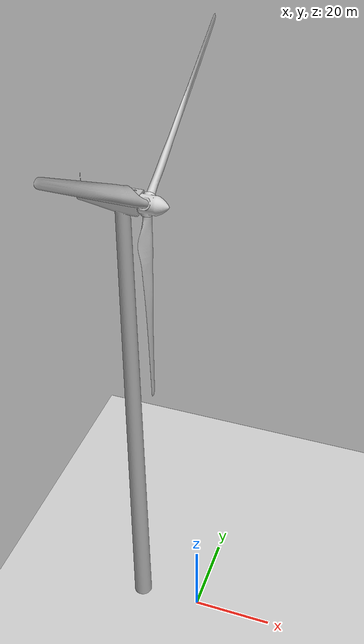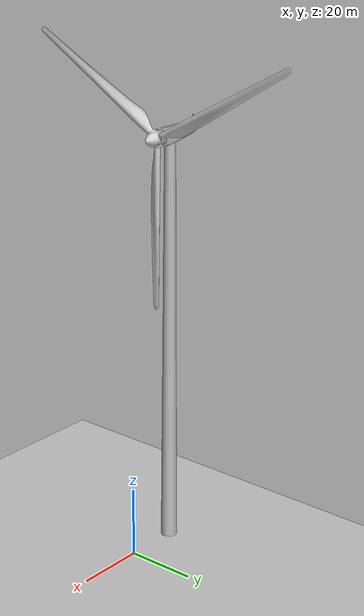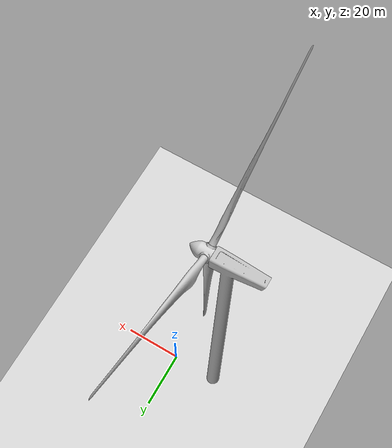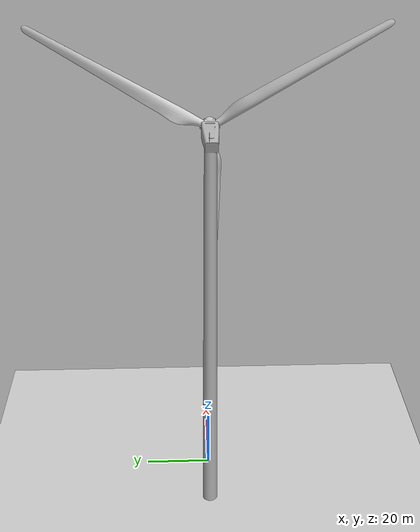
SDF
<?xml version="1.0" ?>
<sdf version="1.4">
  <world name="default">
    <scene>
      <shadows>0</shadows>
    </scene>
    <!-- A ground plane -->
    <include>
      <uri>model://ground_plane</uri>
    </include>

    <include>
      <uri>model://wind_turbine_70m</uri>
        <pose>-15 0  0 0 0 0</pose>
    </include>
    <include>
      <uri>model://sun</uri>
    </include>

    <!-- Only one ROS interface plugin is required per world, as any other plugin can connect a Gazebo
         topic to a ROS topic (or vise versa). -->
    <plugin name="ros_interface_plugin" filename="librotors_gazebo_ros_interface_plugin.so"/>

    <physics name='default_physics' default='0' type='ode'>
      <gravity>0 0 -9.8066</gravity>
      <ode>
        <solver>
          <type>quick</type>
          <iters>500</iters>
          <sor>1.3</sor>
        </solver>
        <constraints>
          <cfm>0</cfm>
          <erp>0.2</erp>
          <contact_max_correcting_vel>100</contact_max_correcting_vel>
          <contact_surface_layer>0.001</contact_surface_layer>
        </constraints>
      </ode>
      <max_step_size>0.001</max_step_size>
      <real_time_factor>1</real_time_factor>
      <real_time_update_rate>1000</real_time_update_rate>
    </physics>
  </world>
</sdf>

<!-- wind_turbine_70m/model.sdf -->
<sdf version="1.4">
  <model name="wind_turbine_70">
    <static>true</static>
        <link name="hub_link">
          <visual name="visual">
            <cast_shadows>false</cast_shadows>
            <pose>3.38 0 119 3.14159 0 0</pose>
            <geometry>
              <mesh>
                <uri>model://wind_turbine_70m/meshes/wind_turbine_hub.dae</uri>
              </mesh>
            </geometry>
          </visual>

      <visual name="visual_blade1">
        <cast_shadows>false</cast_shadows>
        <pose>4.71 0 119 3.14159 0 0</pose>
        <geometry>
          <mesh>
            <uri>model://wind_turbine_70m/meshes/wind_turbine_blade.dae</uri>
          </mesh>
        </geometry>
      </visual>
        <visual name="visual_blade2">
        <cast_shadows>false</cast_shadows>
        <pose>4.71 0 119 1.0472 0 0</pose>
        <geometry>
          <mesh>
            <uri>model://wind_turbine_70m/meshes/wind_turbine_blade.dae</uri>
          </mesh>
        </geometry>
      </visual>
        <visual name="visual_blade3">
        <cast_shadows>false</cast_shadows>
        <pose>4.71 0 119 -1.0472 0 0</pose>
        <geometry>
          <mesh>
            <uri>model://wind_turbine_70m/meshes/wind_turbine_blade.dae</uri>
          </mesh>
        </geometry>
      </visual>
      <visual name="visual_tower">
        <cast_shadows>false</cast_shadows>
        <pose>0 0 0 0 0 0</pose>
        <geometry>
          <mesh>
            <uri>model://wind_turbine_70m/meshes/wind_turbine_tower119.dae</uri>
          </mesh>
        </geometry>
      </visual>
        </link>
  </model>
</sdf>
